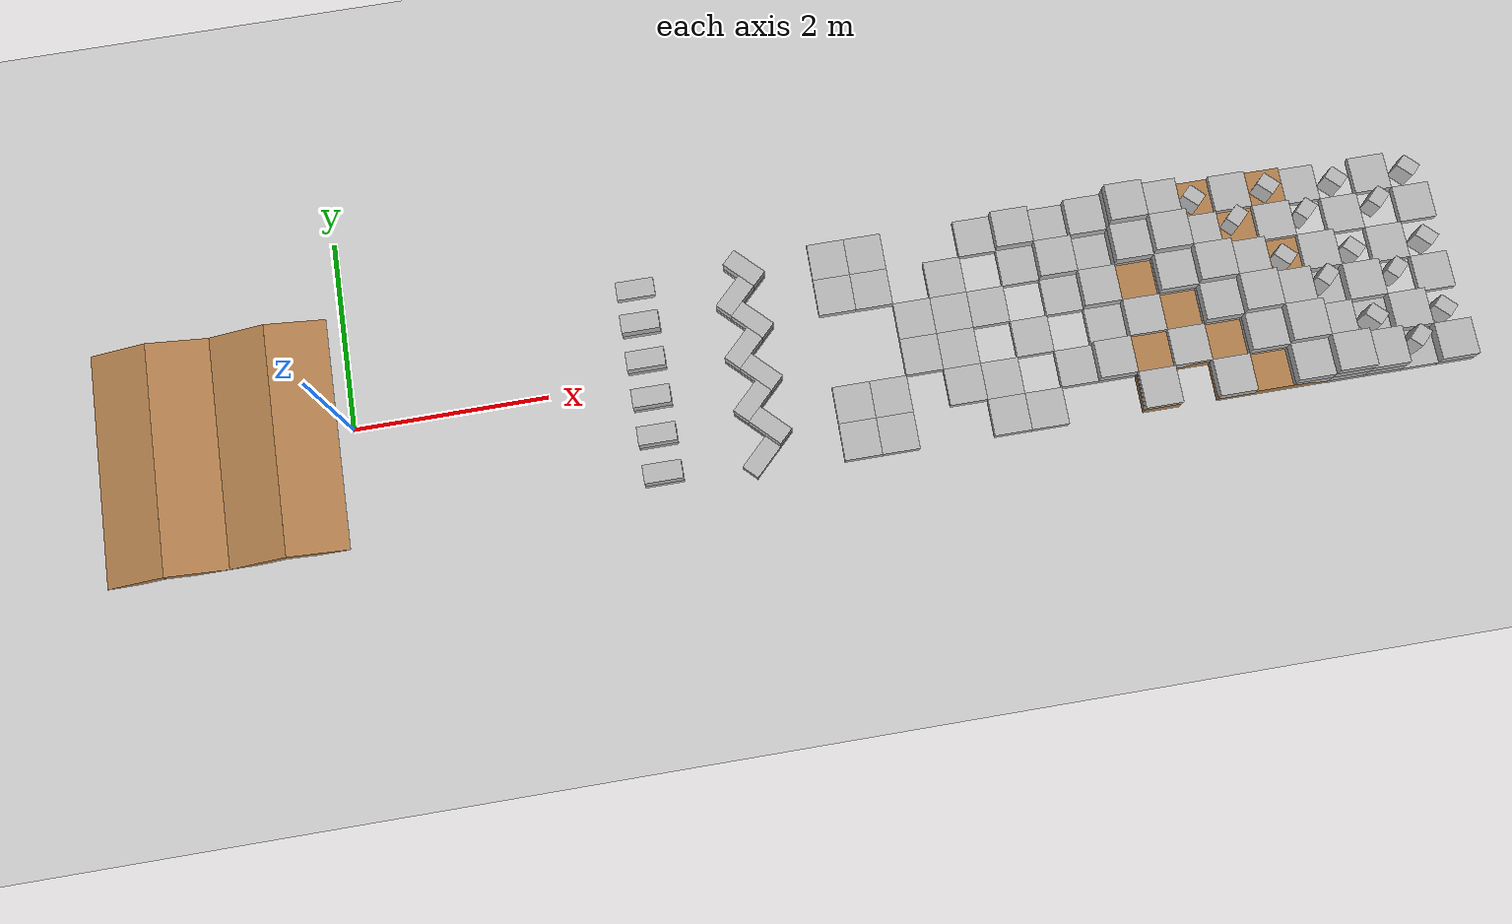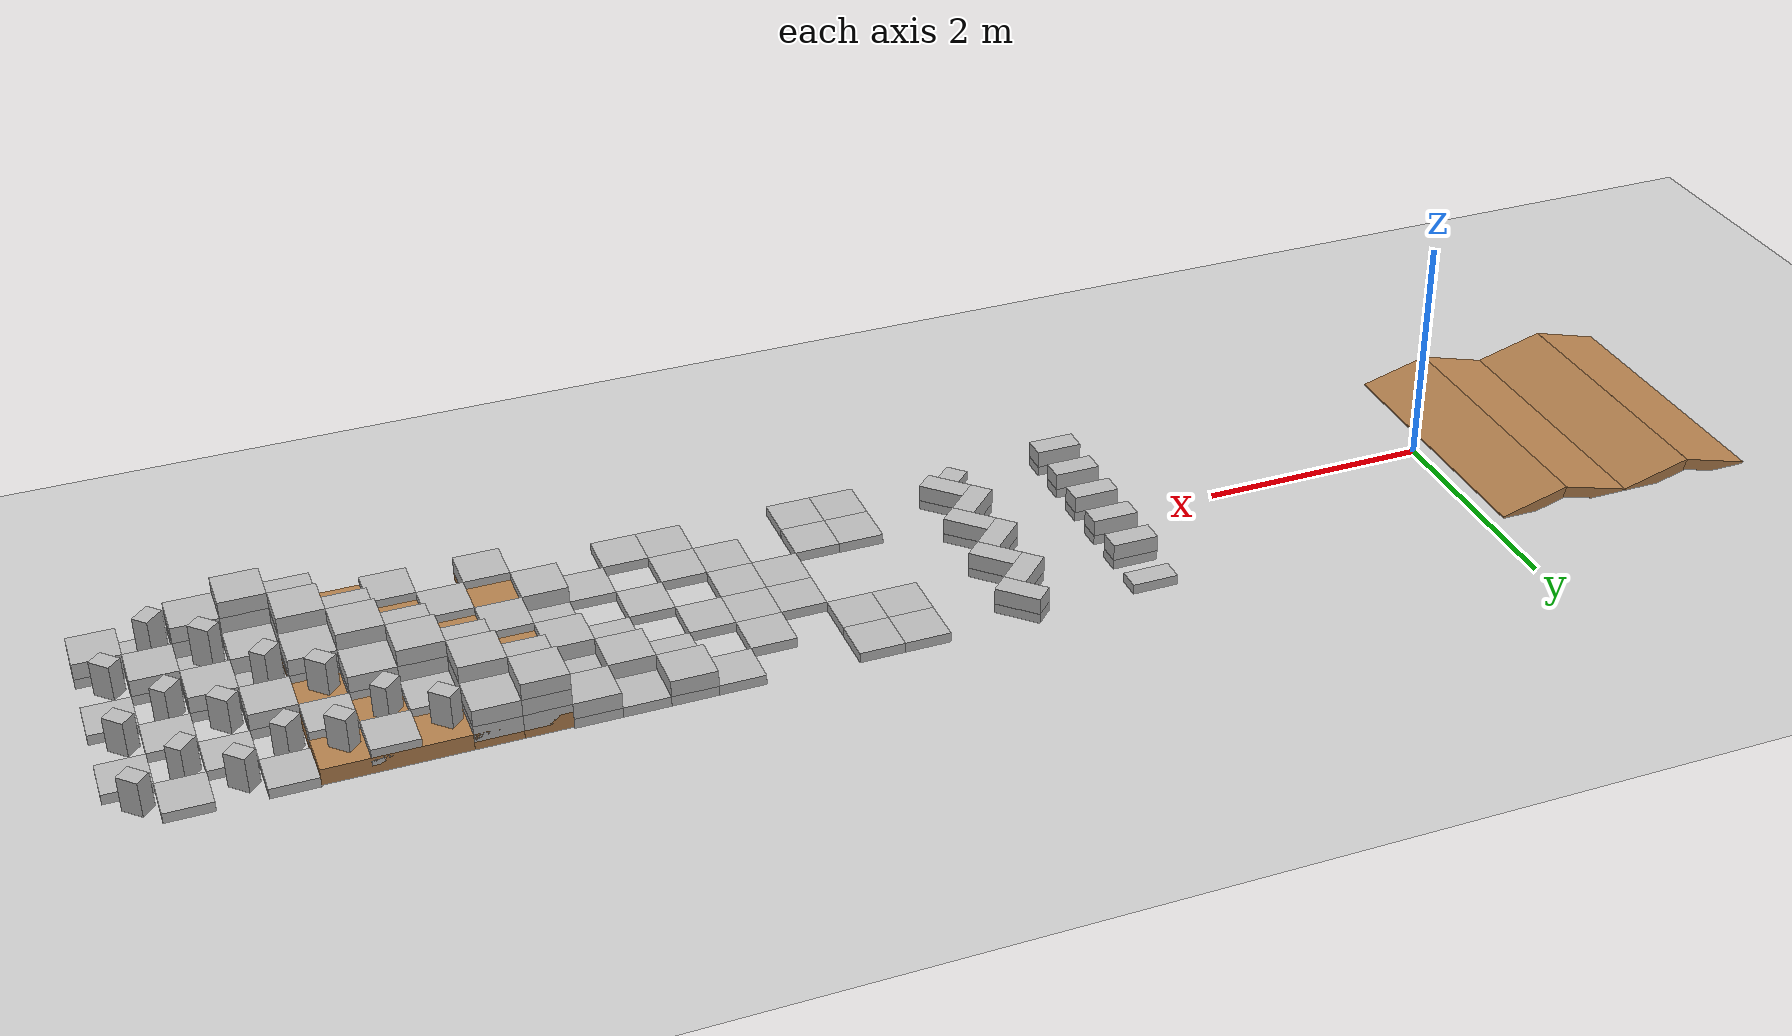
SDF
<sdf version="1.4">
 <world name="trials_task_2">
  <include><uri>model://sun</uri></include>
  <include><uri>model://ground_plane</uri></include>
  <model name="ramp_0">
   <pose>-2 0 0 0 0 0</pose>
   <static>true</static>
   <link name="link">
    <collision name="incline_collision">
     <pose>0.29175 0 0.0335 0 0.261799364 0</pose>
     <geometry><box><size>.631104356 2.43839619 .1</size></box></geometry>
    </collision>
    <visual name="incline_visual">
     <pose>0.29175 0 0.0335 0 0.261799364 0</pose>
     <geometry><box><size>.631104356 2.43839619 .1</size></box></geometry>
     <material><script><name>Gazebo/WoodFloor</name></script></material>
    </visual>
    <collision name="decline_collision">
     <pose>-0.29175 0 0.0335 0 -0.261799364 0</pose>
     <geometry><box><size>.631104356 2.43839619 .1</size></box></geometry>
    </collision>
    <visual name="decline_visual">
     <pose>-0.29175 0 0.0335 0 -0.261799364 0</pose>
     <geometry><box><size>.631104356 2.43839619 .1</size></box></geometry>
     <material><script><name>Gazebo/WoodFloor</name></script></material>
    </visual>
   </link>
  </model>
  <model name="ramp_1">
   <pose>-0.781312 0 0 0 0 0</pose>
   <static>true</static>
   <link name="link">
    <collision name="incline_collision">
     <pose>0.29175 0 0.0335 0 0.261799364 0</pose>
     <geometry><box><size>.631104356 2.43839619 .1</size></box></geometry>
    </collision>
    <visual name="incline_visual">
     <pose>0.29175 0 0.0335 0 0.261799364 0</pose>
     <geometry><box><size>.631104356 2.43839619 .1</size></box></geometry>
     <material><script><name>Gazebo/WoodFloor</name></script></material>
    </visual>
    <collision name="decline_collision">
     <pose>-0.29175 0 0.0335 0 -0.261799364 0</pose>
     <geometry><box><size>.631104356 2.43839619 .1</size></box></geometry>
    </collision>
    <visual name="decline_visual">
     <pose>-0.29175 0 0.0335 0 -0.261799364 0</pose>
     <geometry><box><size>.631104356 2.43839619 .1</size></box></geometry>
     <material><script><name>Gazebo/WoodFloor</name></script></material>
    </visual>
   </link>
  </model>
  <model name="wall_1">
   <static>true</static>
   <pose>0 -1.247773222 0 0 0 0</pose>
   <include>
    <name>block_0</name>
    <uri>model://cinder_block_2</uri>
    <pose>3.048 0.25558496 0.142875 0 0 0</pose>
   </include>
   <include><name>block_1</name><uri>model://cinder_block_2</uri><pose>3.048 0.25558496 0 0 0 0</pose></include>
   <include>
    <name>block_2</name>
    <uri>model://cinder_block_2</uri>
    <pose>3.048 0.652458182 0.142875 0 0 0</pose>
   </include>
   <include><name>block_3</name><uri>model://cinder_block_2</uri><pose>3.048 0.652458182 0 0 0 0</pose></include>
   <include>
    <name>block_4</name>
    <uri>model://cinder_block_2</uri>
    <pose>3.048 1.04933369 0.142875 0 0 0</pose>
   </include>
   <include><name>block_5</name><uri>model://cinder_block_2</uri><pose>3.048 1.04933369 0 0 0 0</pose></include>
   <include>
    <name>block_6</name>
    <uri>model://cinder_block_2</uri>
    <pose>3.048 1.44620869 0.142875 0 0 0</pose>
   </include>
   <include><name>block_7</name><uri>model://cinder_block_2</uri><pose>3.048 1.44620869 0 0 0 0</pose></include>
   <include>
    <name>block_8</name>
    <uri>model://cinder_block_2</uri>
    <pose>3.048 1.84308369 0.142875 0 0 0</pose>
   </include>
   <include><name>block_9</name><uri>model://cinder_block_2</uri><pose>3.048 1.84308369 0 0 0 0</pose></include>
   <include><name>block_10</name><uri>model://cinder_block_2</uri><pose>3.048 2.23995869 0 0 0 0</pose></include>
  </model>
  <model name="wall_2">
   <static>true</static>
   <pose>0 -1.247388158 0 0 0 0</pose>
   <include>
    <name>block_0</name>
    <uri>model://cinder_block_2</uri>
    <pose>4.058409714 0.265174984 0 0 0 0.785398163</pose>
   </include>
   <include>
    <name>block_2</name>
    <uri>model://cinder_block_2</uri>
    <pose>4.19535737 0.545809424 0.142875 0 0 -0.785398163</pose>
   </include>
   <include>
    <name>block_3</name>
    <uri>model://cinder_block_2</uri>
    <pose>4.19535737 0.545809424 0 0 0 -0.785398163</pose>
   </include>
   <include>
    <name>block_4</name>
    <uri>model://cinder_block_2</uri>
    <pose>4.058409714 0.826440054 0.142875 0 0 0.785398163</pose>
   </include>
   <include>
    <name>block_5</name>
    <uri>model://cinder_block_2</uri>
    <pose>4.058409714 0.826440054 0 0 0 0.785398163</pose>
   </include>
   <include>
    <name>block_6</name>
    <uri>model://cinder_block_2</uri>
    <pose>4.19535737 1.107073224 0.142875 0 0 -0.785398163</pose>
   </include>
   <include>
    <name>block_7</name>
    <uri>model://cinder_block_2</uri>
    <pose>4.19535737 1.107073224 0 0 0 -0.785398163</pose>
   </include>
   <include>
    <name>block_8</name>
    <uri>model://cinder_block_2</uri>
    <pose>4.058409714 1.387705886 0.142875 0 0 0.785398163</pose>
   </include>
   <include>
    <name>block_9</name>
    <uri>model://cinder_block_2</uri>
    <pose>4.058409714 1.387705886 0 0 0 0.785398163</pose>
   </include>
   <include>
    <name>block_10</name>
    <uri>model://cinder_block_2</uri>
    <pose>4.19535737 1.668339056 0.142875 0 0 -0.785398163</pose>
   </include>
   <include>
    <name>block_11</name>
    <uri>model://cinder_block_2</uri>
    <pose>4.19535737 1.668339056 0 0 0 -0.785398163</pose>
   </include>
   <include>
    <name>block_12</name>
    <uri>model://cinder_block_2</uri>
    <pose>4.058409714 1.948972226 0.142875 0 0 0.785398163</pose>
   </include>
   <include>
    <name>block_13</name>
    <uri>model://cinder_block_2</uri>
    <pose>4.058409714 1.948972226 0 0 0 0.785398163</pose>
   </include>
   <include>
    <name>block_14</name>
    <uri>model://cinder_block_2</uri>
    <pose>4.19535737 2.229604888 0.142875 0 0 -0.785398163</pose>
   </include>
   <include>
    <name>block_15</name>
    <uri>model://cinder_block_2</uri>
    <pose>4.19535737 2.229604888 0 0 0 -0.785398163</pose>
   </include>
  </model>
  <model name="wide_group_0">
   <static>true</static>
   <pose>5.2736699 -0.774707112 0 0 0 0</pose>
   <include>
    <name>block_0</name>
    <uri>model://cinder_block_wide</uri>
    <pose>-0.193676778 -0.193676778 0 0 0 0</pose>
   </include>
   <include>
    <name>block_1</name>
    <uri>model://cinder_block_wide</uri>
    <pose>0.193676778 -0.193676778  0 0 0 1.5707</pose>
   </include>
   <include>
    <name>block_2</name>
    <uri>model://cinder_block_wide</uri>
    <pose>0.193676778 0.193676778 0 0 0 0</pose>
   </include>
   <include>
    <name>block_3</name>
    <uri>model://cinder_block_wide</uri>
    <pose>-0.193676778 0.193676778 0 0 0 1.5707</pose>
   </include>
  </model>
  <model name="wide_group_1">
   <static>true</static>
   <pose>5.2736699 0.774707112 0 0 0 0</pose>
   <include>
    <name>block_0</name>
    <uri>model://cinder_block_wide</uri>
    <pose>-0.193676778 -0.193676778 0 0 0 0</pose>
   </include>
   <include>
    <name>block_1</name>
    <uri>model://cinder_block_wide</uri>
    <pose>0.193676778 -0.193676778  0 0 0 1.5707</pose>
   </include>
   <include>
    <name>block_2</name>
    <uri>model://cinder_block_wide</uri>
    <pose>0.193676778 0.193676778 0 0 0 0</pose>
   </include>
   <include>
    <name>block_3</name>
    <uri>model://cinder_block_wide</uri>
    <pose>-0.193676778 0.193676778 0 0 0 1.5707</pose>
   </include>
  </model>
  <model name="wide_group_2">
   <static>true</static>
   <pose>6.048377012 0.0 0 0 0 0</pose>
   <include>
    <name>block_0</name>
    <uri>model://cinder_block_wide</uri>
    <pose>-0.193676778 -0.193676778 0 0 0 0</pose>
   </include>
   <include>
    <name>block_1</name>
    <uri>model://cinder_block_wide</uri>
    <pose>0.193676778 -0.193676778  0 0 0 1.5707</pose>
   </include>
   <include>
    <name>block_2</name>
    <uri>model://cinder_block_wide</uri>
    <pose>0.193676778 0.193676778 0 0 0 0</pose>
   </include>
   <include>
    <name>block_3</name>
    <uri>model://cinder_block_wide</uri>
    <pose>-0.193676778 0.193676778 0 0 0 1.5707</pose>
   </include>
  </model>
  <include>
   <name>block_0</name>
   <static>true</static>
   <uri>model://cinder_block_wide</uri>
   <pose>6.24205379 0.581030334 0 0 0 0</pose>
  </include>
  <include>
   <name>block_1</name>
   <static>true</static>
   <uri>model://cinder_block_wide</uri>
   <pose>6.24205379 -0.581030334 0 0 0 0</pose>
  </include>
  <include>
   <name>block_3</name>
   <static>true</static>
   <uri>model://cinder_block_wide</uri>
   <pose>6.629407346 0.96838389 0 0 0 0</pose>
  </include>
  <include>
   <name>block_4</name>
   <static>true</static>
   <uri>model://cinder_block_wide</uri>
   <pose>6.629407346 0.193676778 0 0 0 0</pose>
  </include>
  <include>
   <name>block_5</name>
   <static>true</static>
   <uri>model://cinder_block_wide</uri>
   <pose>6.629407346 -0.581030334 0 0 0 0</pose>
  </include>
  <include>
   <name>block_6</name>
   <static>true</static>
   <uri>model://cinder_block_wide</uri>
   <pose>6.629407346 -0.96838389 0 0 0 0</pose>
  </include>
  <include>
   <name>block_7</name>
   <static>true</static>
   <uri>model://cinder_block_wide</uri>
   <pose>7.016760902 0.96838389 0 0 0 0</pose>
  </include>
  <include>
   <name>block_8</name>
   <static>true</static>
   <uri>model://cinder_block_wide</uri>
   <pose>7.016760902 0.96838389 0.142875 0 0 0</pose>
  </include>
  <include>
   <name>block_9</name>
   <static>true</static>
   <uri>model://cinder_block_wide</uri>
   <pose>7.016760902 0.581030334 0 0 0 0</pose>
  </include>
  <include>
   <name>block_10</name>
   <static>true</static>
   <uri>model://cinder_block_wide</uri>
   <pose>7.016760902 -0.193676778 0 0 0 0</pose>
  </include>
  <include>
   <name>block_11</name>
   <static>true</static>
   <uri>model://cinder_block_wide</uri>
   <pose>7.016760902 -0.96838389 0 0 0 0</pose>
  </include>
  <include>
   <name>block_12</name>
   <static>true</static>
   <uri>model://cinder_block_wide</uri>
   <pose>7.404114458 0.96838389 0 0 0 0</pose>
  </include>
  <include>
   <name>block_13</name>
   <static>true</static>
   <uri>model://cinder_block_wide</uri>
   <pose>7.404114458 0.581030334 0 0 0 0</pose>
  </include>
  <include>
   <name>block_14</name>
   <static>true</static>
   <uri>model://cinder_block_wide</uri>
   <pose>7.404114458 0.581030334 0.142875 0 0 0</pose>
  </include>
  <include>
   <name>block_15</name>
   <static>true</static>
   <uri>model://cinder_block_wide</uri>
   <pose>7.404114458 0.193676778 0 0 0 0</pose>
  </include>
  <include>
   <name>block_16</name>
   <static>true</static>
   <uri>model://cinder_block_wide</uri>
   <pose>7.404114458 -0.581030334 0 0 0 0</pose>
  </include>
  <include>
   <name>block_17</name>
   <static>true</static>
   <uri>model://cinder_block_wide</uri>
   <pose>7.791468014 0.96838389 0 0 0 0</pose>
  </include>
  <include>
   <name>block_18</name>
   <static>true</static>
   <uri>model://cinder_block_wide</uri>
   <pose>7.791468014 0.96838389 0.142875 0 0 0</pose>
  </include>
  <include>
   <name>block_19</name>
   <static>true</static>
   <uri>model://cinder_block_wide</uri>
   <pose>7.791468014 0.581030334 0 0 0 0</pose>
  </include>
  <include>
   <name>block_20</name>
   <static>true</static>
   <uri>model://cinder_block_wide</uri>
   <pose>7.791468014 0.193676778 0 0 0 0</pose>
  </include>
  <include>
   <name>block_21</name>
   <static>true</static>
   <uri>model://cinder_block_wide</uri>
   <pose>7.791468014 0.193676778 0.142875 0 0 0</pose>
  </include>
  <include>
   <name>block_22</name>
   <static>true</static>
   <uri>model://cinder_block_wide</uri>
   <pose>7.791468014 -0.193676778 0 0 0 0</pose>
  </include>
  <include>
   <name>block_23</name>
   <static>true</static>
   <uri>model://cinder_block_wide</uri>
   <pose>7.791468014 -0.581030334 0 0 0 0</pose>
  </include>
  <include>
   <name>block_24</name>
   <static>true</static>
   <uri>model://cinder_block_wide</uri>
   <pose>7.791468014 -0.581030334 0.142875 0 0 0</pose>
  </include>
  <model name="row_width_block_0">
   <static>true</static>
   <pose>8.17882157 0 0.0714375 0 0 0</pose>
   <link name="link">
    <collision name="collision">
     <geometry><box><size>0.387353556 2.324121336 0.142875</size></box></geometry>
    </collision>
    <visual name="visual">
     <geometry><box><size>0.387353556 2.324121336 0.142875</size></box></geometry>
     <material><script><name>Gazebo/WoodFloor</name></script></material>
    </visual>
   </link>
  </model>
  <include>
   <name>block_25</name>
   <static>true</static>
   <uri>model://cinder_block_wide</uri>
   <pose>8.17882157 0.96838389 0.142875 0 0 0</pose>
  </include>
  <include>
   <name>block_26</name>
   <static>true</static>
   <uri>model://cinder_block_wide</uri>
   <pose>8.17882157 0.96838389 0.28575 0 0 0</pose>
  </include>
  <include>
   <name>block_27</name>
   <static>true</static>
   <uri>model://cinder_block_wide</uri>
   <pose>8.17882157 0.96838389 0.428625 0 0 0</pose>
  </include>
  <include>
   <name>block_28</name>
   <static>true</static>
   <uri>model://cinder_block_wide</uri>
   <pose>8.17882157 0.581030334 0.142875 0 0 0</pose>
  </include>
  <include>
   <name>block_29</name>
   <static>true</static>
   <uri>model://cinder_block_wide</uri>
   <pose>8.17882157 0.581030334 0.28575 0 0 0</pose>
  </include>
  <include>
   <name>block_30</name>
   <static>true</static>
   <uri>model://cinder_block_wide</uri>
   <pose>8.17882157 -0.193676778 0.142875 0 0 0</pose>
  </include>
  <include>
   <name>block_31</name>
   <static>true</static>
   <uri>model://cinder_block_wide</uri>
   <pose>8.17882157 -0.96838389 0.142875 0 0 0</pose>
  </include>
  <model name="row_width_block_1">
   <static>true</static>
   <pose>8.566175126 0.193676778 0.0714375 0 0 0</pose>
   <link name="link">
    <collision name="collision">
     <geometry><box><size>0.387353556 1.93676778 0.142875</size></box></geometry>
    </collision>
    <visual name="visual">
     <geometry><box><size>0.387353556 1.93676778 0.142875</size></box></geometry>
     <material><script><name>Gazebo/WoodFloor</name></script></material>
    </visual>
   </link>
  </model>
  <include>
   <name>block_32</name>
   <static>true</static>
   <uri>model://cinder_block_wide</uri>
   <pose>8.566175126 0.96838389 0.142875 0 0 0</pose>
  </include>
  <include>
   <name>block_33</name>
   <static>true</static>
   <uri>model://cinder_block_wide</uri>
   <pose>8.566175126 0.96838389 0.28575 0 0 0</pose>
  </include>
  <include>
   <name>block_34</name>
   <static>true</static>
   <uri>model://cinder_block_wide</uri>
   <pose>8.566175126 0.581030334 0.142875 0 0 0</pose>
  </include>
  <include>
   <name>block_35</name>
   <static>true</static>
   <uri>model://cinder_block_wide</uri>
   <pose>8.566175126 0.581030334 0.28575 0 0 0</pose>
  </include>
  <include>
   <name>block_36</name>
   <static>true</static>
   <uri>model://cinder_block_wide</uri>
   <pose>8.566175126 0.581030334 0.428625 0 0 0</pose>
  </include>
  <include>
   <name>block_37</name>
   <static>true</static>
   <uri>model://cinder_block_wide</uri>
   <pose>8.566175126 0.193676778 0.142875 0 0 0</pose>
  </include>
  <include>
   <name>block_38</name>
   <static>true</static>
   <uri>model://cinder_block_wide</uri>
   <pose>8.566175126 0.193676778 0.28575 0 0 0</pose>
  </include>
  <include>
   <name>block_39</name>
   <static>true</static>
   <uri>model://cinder_block_wide</uri>
   <pose>8.566175126 -0.581030334 0.142875 0 0 0</pose>
  </include>
  <model name="row_width_block_2">
   <static>true</static>
   <pose>9.340882238 0 0.0714375 0 0 0</pose>
   <link name="link">
    <collision name="collision">
     <geometry><box><size>1.162060668 2.324121336 0.142875</size></box></geometry>
    </collision>
    <visual name="visual">
     <geometry><box><size>1.162060668 2.324121336 0.142875</size></box></geometry>
     <material><script><name>Gazebo/WoodFloor</name></script></material>
    </visual>
   </link>
  </model>
  <include>
   <name>block_40</name>
   <static>true</static>
   <uri>model://cinder_block_wide</uri>
   <pose>8.953528682 0.581030334 0.142875 0 0 0</pose>
  </include>
  <include>
   <name>block_41</name>
   <static>true</static>
   <uri>model://cinder_block_wide</uri>
   <pose>8.953528682 0.193676778 0.142875 0 0 0</pose>
  </include>
  <include>
   <name>block_42</name>
   <static>true</static>
   <uri>model://cinder_block_wide</uri>
   <pose>8.953528682 0.193676778 0.28575 0 0 0</pose>
  </include>
  <include>
   <name>block_43</name>
   <static>true</static>
   <uri>model://cinder_block_wide</uri>
   <pose>8.953528682 0.193676778 0.428625 0 0 0</pose>
  </include>
  <include>
   <name>block_44</name>
   <static>true</static>
   <uri>model://cinder_block_wide</uri>
   <pose>8.953528682 -0.193676778 0.142875 0 0 0</pose>
  </include>
  <include>
   <name>block_45</name>
   <static>true</static>
   <uri>model://cinder_block_wide</uri>
   <pose>8.953528682 -0.193676778 0.28575 0 0 0</pose>
  </include>
  <include>
   <name>block_46</name>
   <static>true</static>
   <uri>model://cinder_block_wide</uri>
   <pose>8.953528682 -0.96838389 0.142875 0 0 0</pose>
  </include>
  <include>
   <name>block_47</name>
   <static>true</static>
   <uri>model://cinder_block_2</uri>
   <pose>8.900412 0.916601 0.23971504 0 1.5707 0.7854</pose>
  </include>
  <include>
   <name>block_48</name>
   <static>true</static>
   <uri>model://cinder_block_wide</uri>
   <pose>9.340882238 0.96838389 0.142875 0 0 0</pose>
  </include>
  <include>
   <name>block_49</name>
   <static>true</static>
   <uri>model://cinder_block_2</uri>
   <pose>9.290370 0.630184 0.23971504 0 1.5707 -0.7854</pose>
  </include>
  <include>
   <name>block_50</name>
   <static>true</static>
   <uri>model://cinder_block_wide</uri>
   <pose>9.340882238 0.193676778 0.142875 0 0 0</pose>
  </include>
  <include>
   <name>block_51</name>
   <static>true</static>
   <uri>model://cinder_block_wide</uri>
   <pose>9.340882238 0.193676778 0.28575 0 0 0</pose>
  </include>
  <include>
   <name>block_52</name>
   <static>true</static>
   <uri>model://cinder_block_wide</uri>
   <pose>9.340882238 -0.193676778 0.142875 0 0 0</pose>
  </include>
  <include>
   <name>block_53</name>
   <static>true</static>
   <uri>model://cinder_block_wide</uri>
   <pose>9.340882238 -0.193676778 0.28575 0 0 0</pose>
  </include>
  <include>
   <name>block_54</name>
   <static>true</static>
   <uri>model://cinder_block_wide</uri>
   <pose>9.340882238 -0.193676778 0.428625 0 0 0</pose>
  </include>
  <include>
   <name>block_55</name>
   <static>true</static>
   <uri>model://cinder_block_wide</uri>
   <pose>9.340882238 -0.581030334 0.142875 0 0 0</pose>
  </include>
  <include>
   <name>block_56</name>
   <static>true</static>
   <uri>model://cinder_block_wide</uri>
   <pose>9.340882238 -0.581030334 0.28575 0 0 0</pose>
  </include>
  <include>
   <name>block_57</name>
   <static>true</static>
   <uri>model://cinder_block_2</uri>
   <pose>9.685415 0.916601 0.23971504 0 1.5707 0.7854</pose>
  </include>
  <include>
   <name>block_58</name>
   <static>true</static>
   <uri>model://cinder_block_wide</uri>
   <pose>9.728235794 0.581030334 0.142875 0 0 0</pose>
  </include>
  <include>
   <name>block_59</name>
   <static>true</static>
   <uri>model://cinder_block_2</uri>
   <pose>9.685415 0.141938 0.23971504 0 1.5707 0.7854</pose>
  </include>
  <include>
   <name>block_60</name>
   <static>true</static>
   <uri>model://cinder_block_wide</uri>
   <pose>9.728235794 -0.193676778 0.142875 0 0 0</pose>
  </include>
  <include>
   <name>block_61</name>
   <static>true</static>
   <uri>model://cinder_block_wide</uri>
   <pose>9.728235794 -0.193676778 0.28575 0 0 0</pose>
  </include>
  <include>
   <name>block_62</name>
   <static>true</static>
   <uri>model://cinder_block_wide</uri>
   <pose>9.728235794 -0.581030334 0.142875 0 0 0</pose>
  </include>
  <include>
   <name>block_63</name>
   <static>true</static>
   <uri>model://cinder_block_wide</uri>
   <pose>9.728235794 -0.581030334 0.28575 0 0 0</pose>
  </include>
  <include>
   <name>block_64</name>
   <static>true</static>
   <uri>model://cinder_block_wide</uri>
   <pose>9.728235794 -0.581030334 0.428625 0 0 0</pose>
  </include>
  <include>
   <name>block_65</name>
   <static>true</static>
   <uri>model://cinder_block_wide</uri>
   <pose>9.728235794 -0.96838389 0.142875 0 0 0</pose>
  </include>
  <include>
   <name>block_66</name>
   <static>true</static>
   <uri>model://cinder_block_wide</uri>
   <pose>9.728235794 -0.96838389 0.28575 0 0 0</pose>
  </include>
  <include>
   <name>block_67</name>
   <static>true</static>
   <uri>model://cinder_block_wide</uri>
   <pose>10.11558935 0.96838389 0 0 0 0</pose>
  </include>
  <include>
   <name>block_68</name>
   <static>true</static>
   <uri>model://cinder_block_2</uri>
   <pose>10.06246935 0.630184  0.09684004 0 1.5707 -0.7854</pose>
  </include>
  <include>
   <name>block_69</name>
   <static>true</static>
   <uri>model://cinder_block_wide</uri>
   <pose>10.11558935 0.193676778 0 0 0 0</pose>
  </include>
  <include>
   <name>block_70</name>
   <static>true</static>
   <uri>model://cinder_block_wide</uri>
   <pose>10.11558935 0.193676778 0.142875 0 0 0</pose>
  </include>
  <include>
   <name>block_71</name>
   <static>true</static>
   <uri>model://cinder_block_wide</uri>
   <pose>10.11558935 -0.193676778 0 0 0 0</pose>
  </include>
  <include>
   <name>block_72</name>
   <static>true</static>
   <uri>model://cinder_block_2</uri>
   <pose>10.06246935 -0.141893888 0.23971504 0 1.5707 -0.7854</pose>
  </include>
  <include>
   <name>block_73</name>
   <static>true</static>
   <uri>model://cinder_block_wide</uri>
   <pose>10.11558935 -0.581030334 0 0 0 0</pose>
  </include>
  <include>
   <name>block_74</name>
   <static>true</static>
   <uri>model://cinder_block_wide</uri>
   <pose>10.11558935 -0.581030334 0.142875 0 0 0</pose>
  </include>
  <include>
   <name>block_75</name>
   <static>true</static>
   <uri>model://cinder_block_wide</uri>
   <pose>10.11558935 -0.96838389 0 0 0 0</pose>
  </include>
  <include>
   <name>block_76</name>
   <static>true</static>
   <uri>model://cinder_block_wide</uri>
   <pose>10.11558935 -0.96838389 0.142875 0 0 0</pose>
  </include>
  <include>
   <name>block_77</name>
   <static>true</static>
   <uri>model://cinder_block_wide</uri>
   <pose>10.11558935 -0.96838389 0.28575 0 0 0</pose>
  </include>
  <include>
   <name>block_78</name>
   <static>true</static>
   <uri>model://cinder_block_wide</uri>
   <pose>10.11558935 -0.96838389 0.428625 0 0 0</pose>
  </include>
  <include>
   <name>block_79</name>
   <static>true</static>
   <uri>model://cinder_block_2</uri>
   <pose>10.449822906 0.916601 0.096840 0 1.5707 0.7854</pose>
  </include>
  <include>
   <name>block_80</name>
   <static>true</static>
   <uri>model://cinder_block_wide</uri>
   <pose>10.502942906 0.581030334 0 0 0 0</pose>
  </include>
  <include>
   <name>block_81</name>
   <static>true</static>
   <uri>model://cinder_block_2</uri>
   <pose>10.449822906 0.141893888 0.096840 0 1.5707 0.7854</pose>
  </include>
  <include>
   <name>block_82</name>
   <static>true</static>
   <uri>model://cinder_block_wide</uri>
   <pose>10.502942906 -0.193676778 0 0 0 0</pose>
  </include>
  <include>
   <name>block_83</name>
   <static>true</static>
   <uri>model://cinder_block_wide</uri>
   <pose>10.502942906 -0.193676778 0.142875 0 0 0</pose>
  </include>
  <include>
   <name>block_84</name>
   <static>true</static>
   <uri>model://cinder_block_wide</uri>
   <pose>10.502942906 -0.581030334 0 0 0 0</pose>
  </include>
  <include>
   <name>block_85</name>
   <static>true</static>
   <uri>model://cinder_block_2</uri>
   <pose>10.449822906 -0.629554 0.239715 0 1.5707 0.7854</pose>
  </include>
  <include>
   <name>block_86</name>
   <static>true</static>
   <uri>model://cinder_block_wide</uri>
   <pose>10.502942906 -0.96838389 0 0 0 0</pose>
  </include>
  <include>
   <name>block_87</name>
   <static>true</static>
   <uri>model://cinder_block_wide</uri>
   <pose>10.502942906 -0.96838389 0.142875 0 0 0</pose>
  </include>
  <include>
   <name>block_88</name>
   <static>true</static>
   <uri>model://cinder_block_wide</uri>
   <pose>10.502942906 -0.96838389 0.28575 0 0 0</pose>
  </include>
  <include>
   <name>block_89</name>
   <static>true</static>
   <uri>model://cinder_block_wide</uri>
   <pose>10.890296462 0.96838389 0 0 0 0</pose>
  </include>
  <include>
   <name>block_90</name>
   <static>true</static>
   <uri>model://cinder_block_2</uri>
   <pose>10.837176462 0.630184 0.096840 0 1.5707 -0.7854</pose>
  </include>
  <include>
   <name>block_91</name>
   <static>true</static>
   <uri>model://cinder_block_wide</uri>
   <pose>10.890296462 0.193676778 0 0 0 0</pose>
  </include>
  <include>
   <name>block_92</name>
   <static>true</static>
   <uri>model://cinder_block_2</uri>
   <pose>10.837176462 -0.145674 0.096840 0 1.5707 -0.7854</pose>
  </include>
  <include>
   <name>block_93</name>
   <static>true</static>
   <uri>model://cinder_block_wide</uri>
   <pose>10.890296462 -0.581030334 0 0 0 0</pose>
  </include>
  <include>
   <name>block_94</name>
   <static>true</static>
   <uri>model://cinder_block_wide</uri>
   <pose>10.890296462 -0.581030334 0.142875 0 0 0</pose>
  </include>
  <include>
   <name>block_95</name>
   <static>true</static>
   <uri>model://cinder_block_wide</uri>
   <pose>10.890296462 -0.96838389 0 0 0 0</pose>
  </include>
  <include>
   <name>block_96</name>
   <static>true</static>
   <uri>model://cinder_block_2</uri>
   <pose>10.837176462 -0.919799 0.239715 0 1.5707 -0.7854</pose>
  </include>
  <include>
   <name>block_97</name>
   <static>true</static>
   <uri>model://cinder_block_2</uri>
   <pose>11.224530018 0.916601 0.096840 0 1.5707 0.7854</pose>
  </include>
  <include>
   <name>block_98</name>
   <static>true</static>
   <uri>model://cinder_block_wide</uri>
   <pose>11.277650018 0.581030334 0 0 0 0</pose>
  </include>
  <include>
   <name>block_99</name>
   <static>true</static>
   <uri>model://cinder_block_2</uri>
   <pose>11.224530018 0.141893888 0.096840 0 1.5707 0.7854</pose>
  </include>
  <include>
   <name>block_100</name>
   <static>true</static>
   <uri>model://cinder_block_wide</uri>
   <pose>11.277650018 -0.193676778 0 0 0 0</pose>
  </include>
  <include>
   <name>block_101</name>
   <static>true</static>
   <uri>model://cinder_block_2</uri>
   <pose>11.224530018 -0.629554 0.096840 0 1.5707 0.7854</pose>
  </include>
  <include>
   <name>block_101a</name>
   <static>true</static>
   <uri>model://cinder_block_wide</uri>
   <pose>11.277650018 -0.96838389 0 0 0 0</pose>
  </include>
  <include>
   <name>block_102</name>
   <static>true</static>
   <uri>model://cinder_block_wide</uri>
   <pose>11.277650018 -0.96838389 0.142875 0 0 0</pose>
  </include>
 </world>
</sdf>
